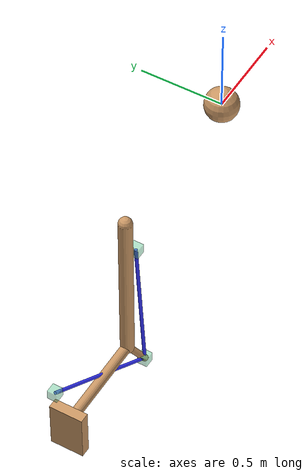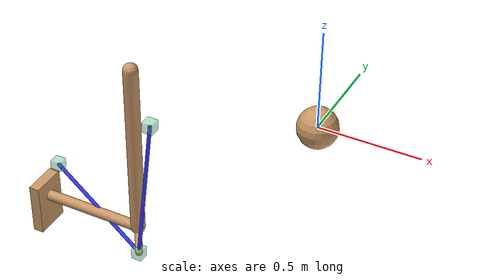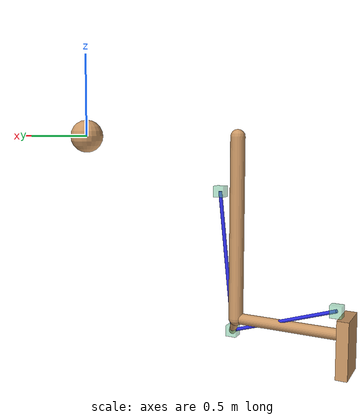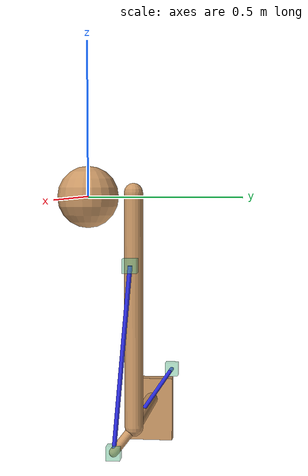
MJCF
<mujoco>
  <option integrator="RK4">
    <flag contact="disable" gravity="disable" energy="enable"/>
  </option>

  <default>
    <geom rgba="0.8 0.6 .4 1"/>
    <site rgba="0.4 0.8 .6 .5"/>
  </default>

  <worldbody>
    <body name="distractor">
      <freejoint/>
      <geom size=".1"/>
    </body>

    <body name="thigh" pos="-1 0 0">
      <site name="0" type="box" size=".03 .03 .03" pos=".1 0 -.3"/>
      <freejoint/>
      <geom type="capsule" size=".04" fromto="0 0 0 0 0 -1"/>
      <geom type="capsule" size=".02" fromto="0 0 -1 .05 -.08 -1.1"/>
      <site name="1" type="box" size=".03 .03 .03" pos=".05 -.08 -1.1"/>
      <body name="calf" pos="0 0 -1">
        <joint axis="0 -1 0" damping="0" stiffness="20" springref="90"/>
        <geom type="capsule" size=".03" fromto="0 0 0 -.6 0 0"/>
        <body name="foot" pos="-.6 0 0">
          <joint type="ball" stiffness="20" armature=".2"/>
          <site name="2" type="box" size=".03 .03 .03" pos=".03 .1 .15"/>
          <geom name="foot" type="box" size=".03 .1 .15" pos="0 0 -.05"/>
        </body>
      </body>
    </body>
  </worldbody>

  <tendon>
    <spatial name="ten" width=".01" rgba=".2 .2 1 1" armature="100" stiffness="10">
      <site site="0"/>
      <site site="1"/>
      <site site="2"/>
    </spatial>
  </tendon>

  <sensor>
    <subtreelinvel body="thigh"/>
    <subtreeangmom body="thigh"/>
  </sensor>
</mujoco>
